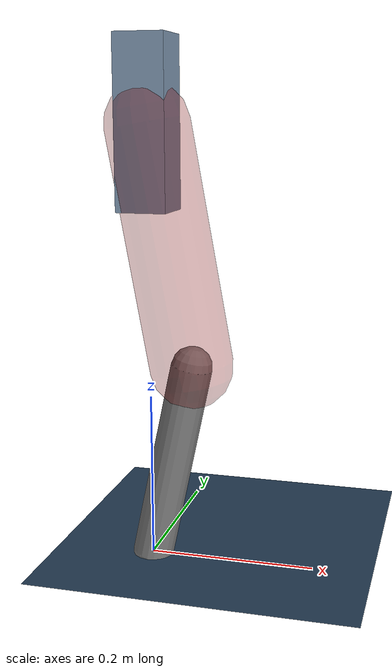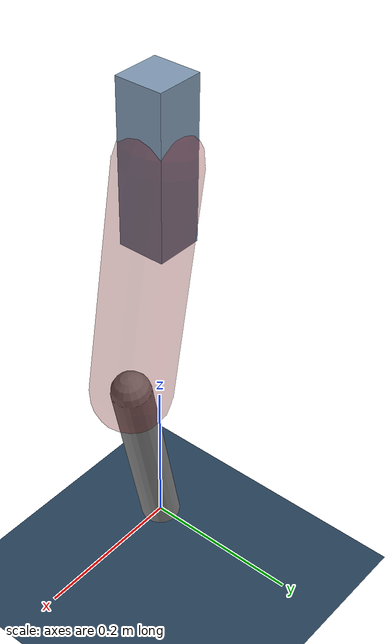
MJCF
<mujoco model="Hopper2D">
	<compiler inertiafromgeom="true" angle="radian" />
	<option timestep="0.001" integrator="implicit" cone="elliptic" solver="Newton" tolerance="1e-10" />

	<default>
		<geom contype="1" conaffinity="1" condim="3" friction="2 0.005 0.0001" solref="0.005 1" />
		<joint limited="true" damping="0.1" />
	</default>

	<asset>
		<texture name="skybox" type="skybox" builtin="gradient" rgb1=".4 .6 .8" rgb2="0 0 0" width="800" height="800" />
		<texture name="grid" type="2d" builtin="checker" rgb1=".1 .2 .3" rgb2=".2 .3 .4" width="300" height="300" mark="edge" markrgb=".2 .3 .4" />
		<material name="ground" texture="grid" texrepeat="1 1" texuniform="true" reflectance="0.1" />
		<material name="leg" rgba="0.5 0.6 0.7 1" />
	</asset>

	<worldbody>

		<geom name="floor" type="plane" size="5 5 0.25" material="ground" />

		<light directional="false" diffuse="0.8 0.8 0.8" specular="0.3 0.3 0.3" pos="0 0 2" dir="0 0 -1" />
		<light mode="targetbodycom" target="base" directional="false" diffuse="0.8 0.8 0.8" specular="0.3 0.3 0.3" pos="0 0 2" dir="0 0 -1" />

		<camera name="fixed" pos="0 -2 1" xyaxes="1 0 0 0 0 1" />
		<camera name="tracking" mode="trackcom" pos="0 -3 1" />

		<body name="root" pos="0 0 0.5248557173983821">
			<joint name="slide_x" type="slide" axis="1 0 0" range="-100 100" />
			<joint name="slide_z" type="slide" axis="0 0 1" range="0 10" />

			<body name="base" pos="0 0 0">
				<geom name="torso" type="box" size="0.03 0.03 0.1" mass="2.277" material="leg" />

				<body name="link1" pos="0 0 0" euler="0 1.392093681331644 0">
					<joint type="hinge" axis="0 -1 0" pos="0 0 0" name="hinge1" limited="true" range="-3.14 3.14" stiffness="0" damping="0.1" />
					<geom name="thigh" type="capsule" fromto="0 0 0 0.2886198027454724 0 0" size="0.05" rgba="0.5 0 0 0.3" mass="0.9581114871382282" />

					<body name="link2" pos="0.2886198027454724 0 0" euler="0 0.38858941200521974 0">
						<joint type="hinge" axis="0 -1 0" pos="0 0 0" name="hinge2" limited="true" range="-3.14 3.14" stiffness="0" damping="0.1" />
						<geom name="shank" type="capsule" fromto="0 0 0 0.24623591465290973 0 0" size="0.025" mass="0.43941232318761875" />

					</body>
				</body>
			</body>
		</body>
	</worldbody>

	<actuator>
		<motor name="torque1" joint="hinge1" ctrlrange="-27.801525615238944 27.801525615238944" ctrllimited="true" gear="1" />
		<motor name="torque2" joint="hinge2" ctrlrange="-144.04347776880158 144.04347776880158" ctrllimited="true" gear="1" />
	</actuator>
</mujoco>
